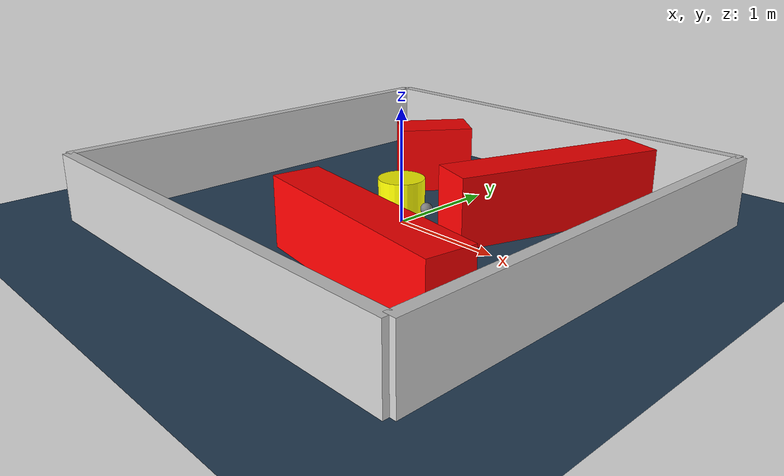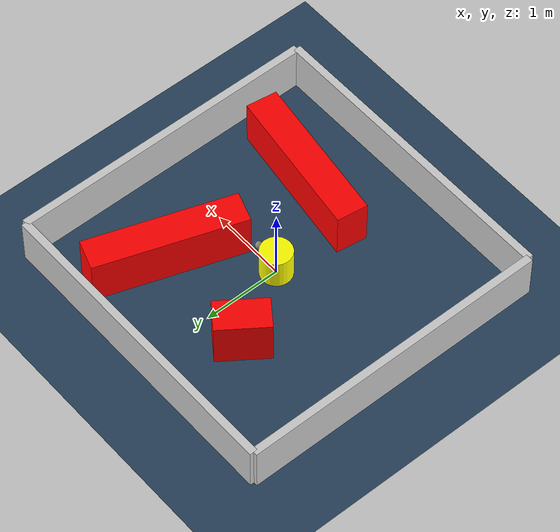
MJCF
<?xml version="1.0" ?>
<mujoco model="generated_environment">
  <option timestep="0.01" integrator="RK4" cone="elliptic"/>
  <default>
    <geom density="1"/>
  </default>
  <asset>
    <texture builtin="gradient" height="3072" rgb1="0.3 0.5 0.7" rgb2="0 0 0" type="skybox" width="512"/>
    <texture builtin="checker" height="300" mark="edge" markrgb="0.8 0.8 0.8" name="groundplane" rgb1="0.2 0.3 0.4" rgb2="0.1 0.2 0.3" type="2d" width="300"/>
    <material name="groundplane" reflectance="0.2" texrepeat="5 5" texture="groundplane" texuniform="true"/>
    <material name="robot" rgba="0.0 1.0 0.0 1"/>
  </asset>
  <worldbody>
    <light dir="0 0 -1" directional="true" pos="0 0 1.5"/>
    <geom condim="4" friction="1.0 0.005 0.001" material="groundplane" name="floor" size="0 0 0.05" type="plane"/>
    <body name="walls">
      <geom name="wall_1" condim="4" pos="-2.0 0.0 0.3" rgba="0.800000011920929 0.800000011920929 0.800000011920929 1.0" size="0.05 2.0 0.3" type="box"/>
      <geom name="wall_2" condim="4" pos="2.0 0.0 0.3" rgba="0.800000011920929 0.800000011920929 0.800000011920929 1.0" size="0.05 2.0 0.3" type="box"/>
      <geom name="wall_3" condim="4" pos="0.0 -2.0 0.3" rgba="0.800000011920929 0.800000011920929 0.800000011920929 1.0" size="2.0 0.05 0.3" type="box"/>
      <geom name="wall_4" condim="4" pos="0.0 2.0 0.3" rgba="0.800000011920929 0.800000011920929 0.800000011920929 1.0" size="2.0 0.05 0.3" type="box"/>
    </body>
    <body name="robot">
      <joint name="joint_x" type="slide" pos="0 0 0" axis="1 0 0"/>
      <joint name="joint_y" type="slide" pos="0 0 0" axis="0 1 0"/>
      <geom name="robot" type="sphere" pos="0.3 0.0 0.2" size="0.05" mass="5." friction="1.0 0.005 0.0001" condim="4" rgba="0.5 0.5 0.5 1.0"/>
      <site name="sensor_ball"/>
    </body>
    <body name="obstacle_movable_1">
      <geom name="obstacle_movable_1" condim="4" pos="0.0 0.0 0.2" euler="0 0 0.0" friction="1.0 0.005 0.001" rgba="1.0 1.0 0.0 1.0" size="0.2 0.2 0.0" type="cylinder" mass="0.1"/>
      <joint type="free"/>
    </body>
    <body name="obstacle_2_static">
      <geom name="obstacle_2_static" condim="4" pos="0.7080324358873495 -1.0432452239489654 0.3" euler="0 0 171.72846788382594" friction="1.0 0.005 0.001" rgba="1 0 0 1" size="0.9777711218041234 0.2 0.3" type="box"/>
    </body>
    <body name="obstacle_3_static">
      <geom name="obstacle_3_static" condim="4" pos="0.9038202232696173 0.8626369598710617 0.3" euler="0 0 71.01961240985294" friction="1.0 0.005 0.001" rgba="1 0 0 1" size="0.950244024840702 0.2 0.3" type="box"/>
    </body>
    <body name="obstacle_4_static">
      <geom name="obstacle_4_static" condim="4" pos="-0.5323703406429787 0.9416355970938339 0.3" euler="0 0 234.0103152747148" friction="1.0 0.005 0.001" rgba="1 0 0 1" size="0.33138740328722804 0.2 0.3" type="box"/>
    </body>
  </worldbody>
  <actuator>
    <motor name="actuator_x" joint="joint_x" gear="1" ctrlrange="-1 1"/>
    <motor name="actuator_y" joint="joint_y" gear="1" ctrlrange="-1 1"/>
  </actuator>
</mujoco>
